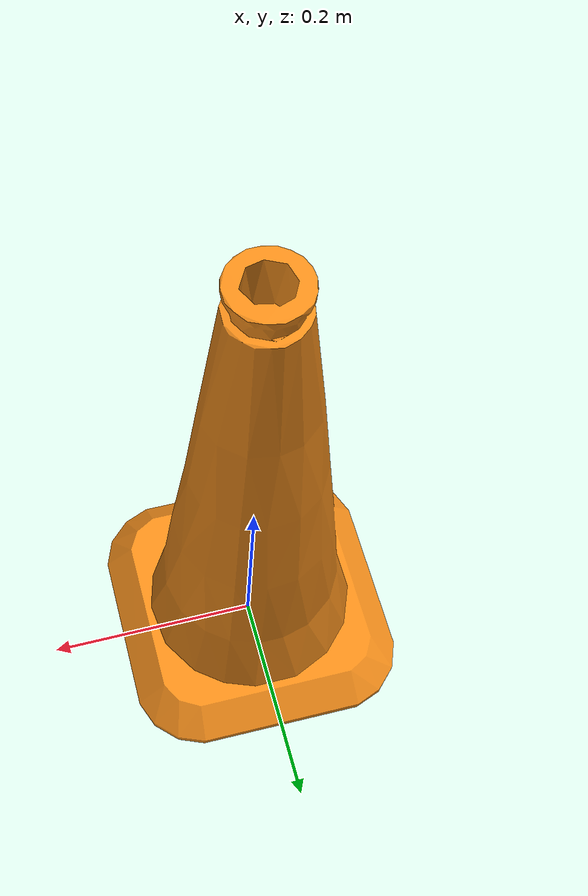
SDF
<?xml version='1.0'?>
<sdf version='1.6'>
  <model name='big_cone'>
    <link name='link'>
      <pose frame=''>0 0 0 0 0 0</pose>
      <inertial>
        <inertia>
          <ixx>0.0016</ixx>
          <ixy>0</ixy>
          <ixz>0</ixz>
          <iyy>0.0016</iyy>
          <iyz>0</iyz>
          <izz>0.0010</izz>
        </inertia>
        <mass>0.45</mass>
      </inertial>
      <visual name='visual'>
        <geometry>
          <mesh>
            <uri>file://cone_big_notexture.dae</uri>
          </mesh>
        </geometry>
        <cast_shadows>1</cast_shadows>
        <material>
          <script>
            <uri>file://gazebo.material</uri>
            <name>Gazebo/OrangeCone</name>
          </script>
        </material>
      </visual>
      <collision name='collision1'>
        <max_contacts>3</max_contacts>
        <geometry>
          <mesh>
            <uri>file://cone_big_no_stripe.dae</uri>
          </mesh>
        </geometry>
        <laser_retro>0.1</laser_retro>
      </collision>
      <collision name='collision2'>
        <max_contacts>3</max_contacts>
        <geometry>
          <mesh>
            <uri>file://cone_big_stripe_only.dae</uri>
          </mesh>
        </geometry>
        <laser_retro>0.2</laser_retro>
      </collision>
    </link>
  </model>
</sdf>
